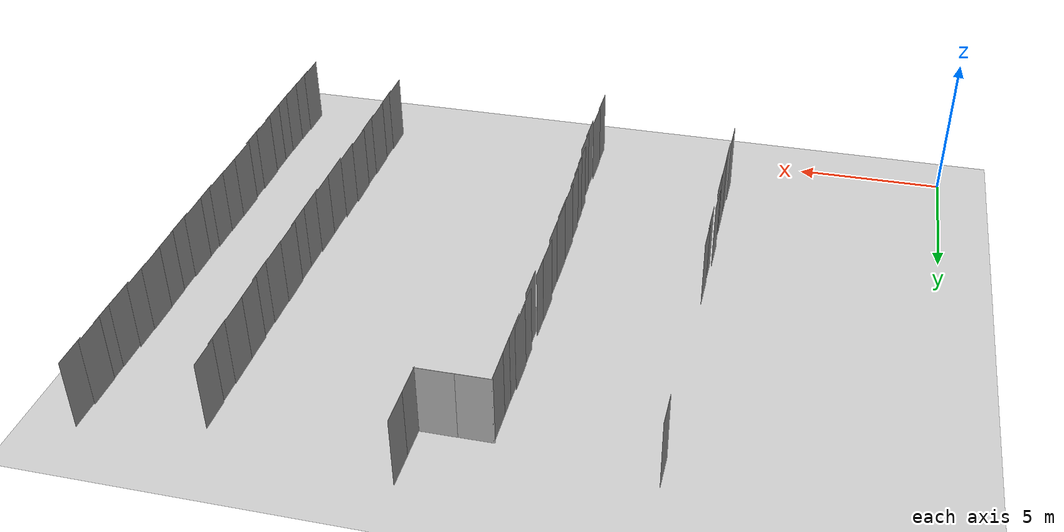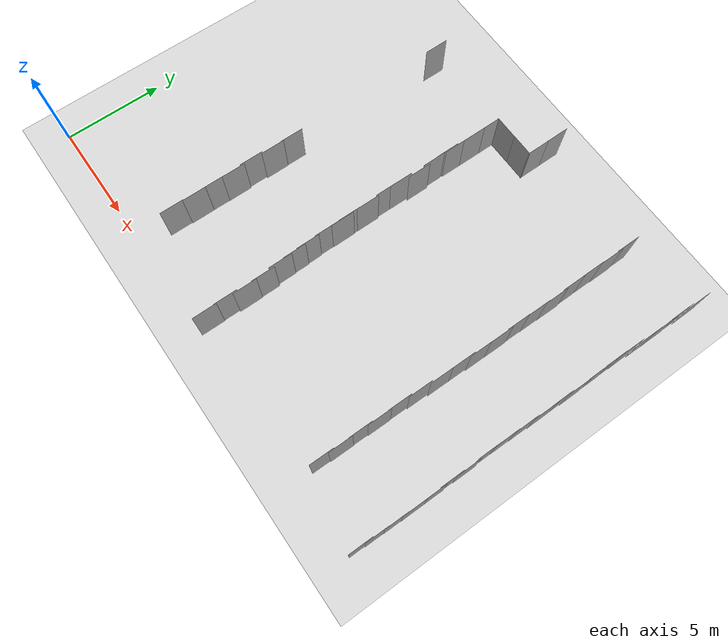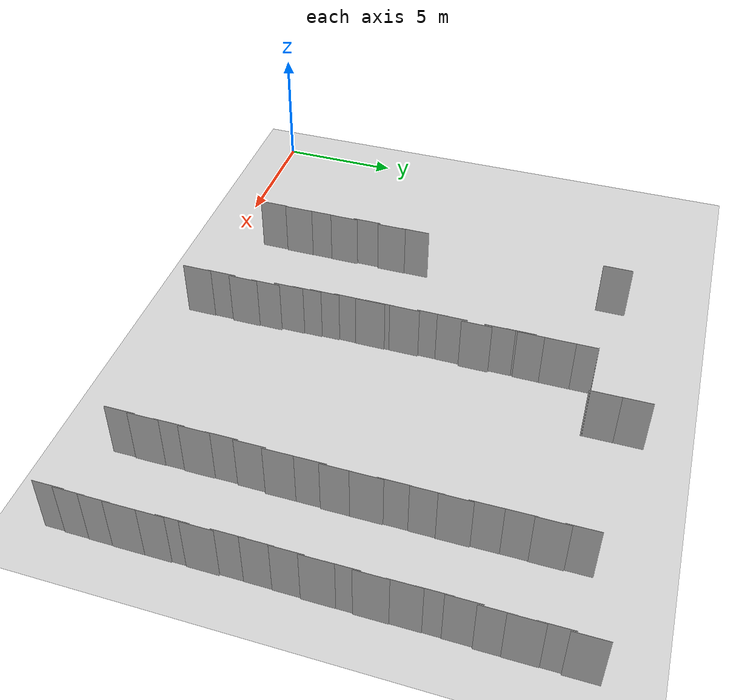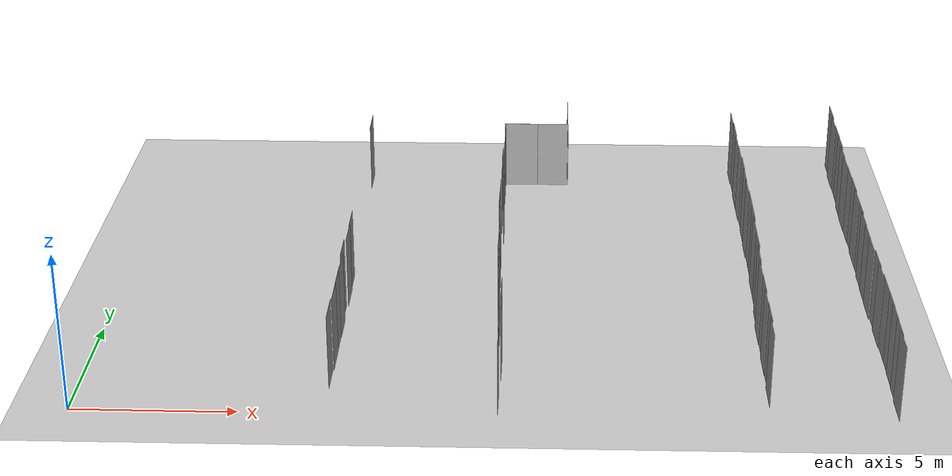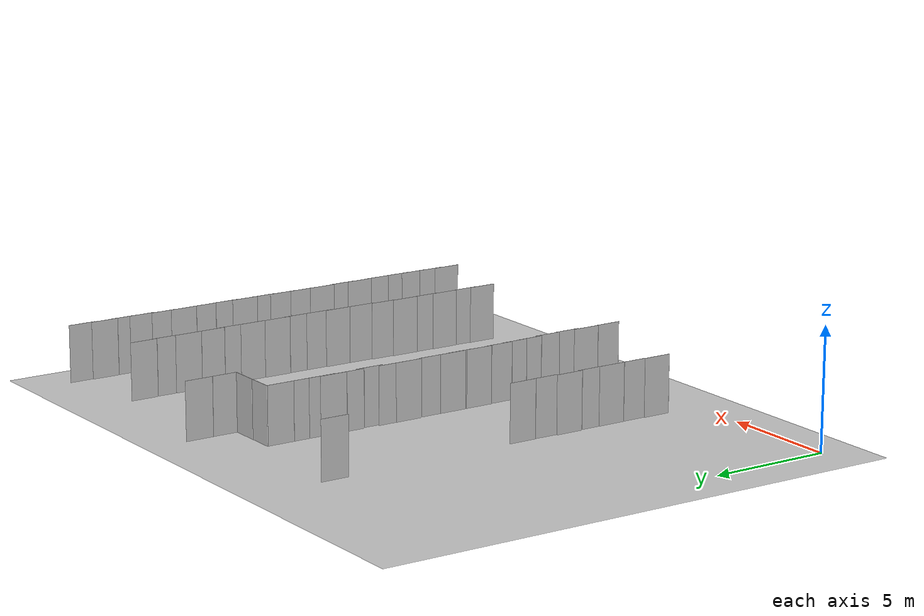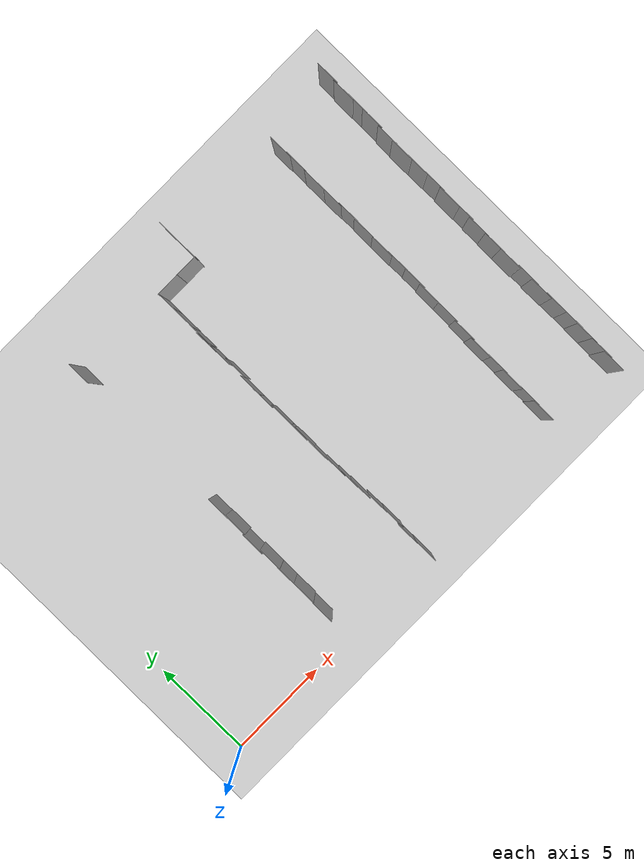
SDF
<sdf version="1.7">
 <world name="default">
  <model name="ground_plane">
   <static>1</static>
   <link name="link">
    <collision name="collision">
     <geometry><plane><normal>0 0 1</normal><size>100 100</size></plane></geometry>
     <surface><friction><ode><mu>100</mu><mu2>50</mu2></ode></friction></surface>
    </collision>
    <visual name="visual">
     <cast_shadows>0</cast_shadows>
     <geometry><plane><normal>0 0 1</normal><size>100 100</size></plane></geometry>
     <material>
      <script><uri>file://media/materials/scripts/gazebo.material</uri><name>Gazebo/Grey</name></script>
     </material>
    </visual>
   </link>
  </model>
  <model name="nist_maze_wall_240_clone_3_clone_5_clone_clone_0_clone_0">
   <static>1</static>
   <link name="nist__maze_wall_240_link">
    <collision name="collision">
     <geometry>
      <mesh><uri>model://nist_maze_wall_240/meshes/nist_maze_wall_240.dae</uri><scale>1 1 1</scale></mesh>
     </geometry>
    </collision>
    <visual name="visual">
     <geometry>
      <mesh><uri>model://nist_maze_wall_240/meshes/nist_maze_wall_240.dae</uri><scale>1 1 1</scale></mesh>
     </geometry>
    </visual>
   </link>
   <pose>13.1914 0.653304 0 0 -0 1.57</pose>
  </model>
  <model name="nist_maze_wall_240_clone_3_clone_5_clone_clone_0_clone_2">
   <static>1</static>
   <link name="nist__maze_wall_240_link">
    <collision name="collision">
     <geometry>
      <mesh><uri>model://nist_maze_wall_240/meshes/nist_maze_wall_240.dae</uri><scale>1 1 1</scale></mesh>
     </geometry>
    </collision>
    <visual name="visual">
     <geometry>
      <mesh><uri>model://nist_maze_wall_240/meshes/nist_maze_wall_240.dae</uri><scale>1 1 1</scale></mesh>
     </geometry>
    </visual>
   </link>
   <pose>13.169 1.7119 0 0 -0 1.57</pose>
  </model>
  <model name="nist_maze_wall_240_clone_3_clone_5_clone_clone_0_clone_3">
   <static>1</static>
   <link name="nist__maze_wall_240_link">
    <collision name="collision">
     <geometry>
      <mesh><uri>model://nist_maze_wall_240/meshes/nist_maze_wall_240.dae</uri><scale>1 1 1</scale></mesh>
     </geometry>
    </collision>
    <visual name="visual">
     <geometry>
      <mesh><uri>model://nist_maze_wall_240/meshes/nist_maze_wall_240.dae</uri><scale>1 1 1</scale></mesh>
     </geometry>
    </visual>
   </link>
   <pose>13.2334 2.66225 0 0 -0 1.57</pose>
  </model>
  <model name="nist_maze_wall_240_clone_3_clone_5_clone_clone_0_clone_4">
   <static>1</static>
   <link name="nist__maze_wall_240_link">
    <collision name="collision">
     <geometry>
      <mesh><uri>model://nist_maze_wall_240/meshes/nist_maze_wall_240.dae</uri><scale>1 1 1</scale></mesh>
     </geometry>
    </collision>
    <visual name="visual">
     <geometry>
      <mesh><uri>model://nist_maze_wall_240/meshes/nist_maze_wall_240.dae</uri><scale>1 1 1</scale></mesh>
     </geometry>
    </visual>
   </link>
   <pose>13.2046 3.61599 0 0 -0 1.57</pose>
  </model>
  <model name="nist_maze_wall_240_clone_3_clone_5_clone_clone_0_clone_5">
   <static>1</static>
   <link name="nist__maze_wall_240_link">
    <collision name="collision">
     <geometry>
      <mesh><uri>model://nist_maze_wall_240/meshes/nist_maze_wall_240.dae</uri><scale>1 1 1</scale></mesh>
     </geometry>
    </collision>
    <visual name="visual">
     <geometry>
      <mesh><uri>model://nist_maze_wall_240/meshes/nist_maze_wall_240.dae</uri><scale>1 1 1</scale></mesh>
     </geometry>
    </visual>
   </link>
   <pose>13.1179 4.56936 0 0 -0 1.57</pose>
  </model>
  <model name="nist_maze_wall_240_clone_3_clone_5_clone_clone_0_clone_6">
   <static>1</static>
   <link name="nist__maze_wall_240_link">
    <collision name="collision">
     <geometry>
      <mesh><uri>model://nist_maze_wall_240/meshes/nist_maze_wall_240.dae</uri><scale>1 1 1</scale></mesh>
     </geometry>
    </collision>
    <visual name="visual">
     <geometry>
      <mesh><uri>model://nist_maze_wall_240/meshes/nist_maze_wall_240.dae</uri><scale>1 1 1</scale></mesh>
     </geometry>
    </visual>
   </link>
   <pose>13.0912 5.31717 0 0 -0 1.57</pose>
  </model>
  <model name="nist_maze_wall_240_clone_3_clone_5_clone_clone_0_clone_7">
   <static>1</static>
   <link name="nist__maze_wall_240_link">
    <collision name="collision">
     <geometry>
      <mesh><uri>model://nist_maze_wall_240/meshes/nist_maze_wall_240.dae</uri><scale>1 1 1</scale></mesh>
     </geometry>
    </collision>
    <visual name="visual">
     <geometry>
      <mesh><uri>model://nist_maze_wall_240/meshes/nist_maze_wall_240.dae</uri><scale>1 1 1</scale></mesh>
     </geometry>
    </visual>
   </link>
   <pose>13.0578 6.05257 0 0 -0 1.57</pose>
  </model>
  <model name="nist_maze_wall_240_clone_3_clone_5_clone_clone_0_clone_8">
   <static>1</static>
   <link name="nist__maze_wall_240_link">
    <collision name="collision">
     <geometry>
      <mesh><uri>model://nist_maze_wall_240/meshes/nist_maze_wall_240.dae</uri><scale>1 1 1</scale></mesh>
     </geometry>
    </collision>
    <visual name="visual">
     <geometry>
      <mesh><uri>model://nist_maze_wall_240/meshes/nist_maze_wall_240.dae</uri><scale>1 1 1</scale></mesh>
     </geometry>
    </visual>
   </link>
   <pose>13.0235 7.06227 0 0 -0 1.57</pose>
  </model>
  <model name="nist_maze_wall_240_clone_3_clone_5_clone_clone_0_clone_9">
   <static>1</static>
   <link name="nist__maze_wall_240_link">
    <collision name="collision">
     <geometry>
      <mesh><uri>model://nist_maze_wall_240/meshes/nist_maze_wall_240.dae</uri><scale>1 1 1</scale></mesh>
     </geometry>
    </collision>
    <visual name="visual">
     <geometry>
      <mesh><uri>model://nist_maze_wall_240/meshes/nist_maze_wall_240.dae</uri><scale>1 1 1</scale></mesh>
     </geometry>
    </visual>
   </link>
   <pose>13.0135 8.31158 0 0 -0 1.57</pose>
  </model>
  <model name="nist_maze_wall_240_clone_3_clone_5_clone_clone_0_clone_10">
   <static>1</static>
   <link name="nist__maze_wall_240_link">
    <collision name="collision">
     <geometry>
      <mesh><uri>model://nist_maze_wall_240/meshes/nist_maze_wall_240.dae</uri><scale>1 1 1</scale></mesh>
     </geometry>
    </collision>
    <visual name="visual">
     <geometry>
      <mesh><uri>model://nist_maze_wall_240/meshes/nist_maze_wall_240.dae</uri><scale>1 1 1</scale></mesh>
     </geometry>
    </visual>
   </link>
   <pose>13.0231 9.31966 0 0 -0 1.57</pose>
  </model>
  <model name="nist_maze_wall_240_clone_3_clone_5_clone_clone_0_clone_11">
   <static>1</static>
   <link name="nist__maze_wall_240_link">
    <collision name="collision">
     <geometry>
      <mesh><uri>model://nist_maze_wall_240/meshes/nist_maze_wall_240.dae</uri><scale>1 1 1</scale></mesh>
     </geometry>
    </collision>
    <visual name="visual">
     <geometry>
      <mesh><uri>model://nist_maze_wall_240/meshes/nist_maze_wall_240.dae</uri><scale>1 1 1</scale></mesh>
     </geometry>
    </visual>
   </link>
   <pose>13.043 7.93222 0 0 -0 1.57</pose>
  </model>
  <model name="nist_maze_wall_240_clone_3_clone_5_clone_clone_0_clone_15">
   <static>1</static>
   <link name="nist__maze_wall_240_link">
    <collision name="collision">
     <geometry>
      <mesh><uri>model://nist_maze_wall_240/meshes/nist_maze_wall_240.dae</uri><scale>1 1 1</scale></mesh>
     </geometry>
    </collision>
    <visual name="visual">
     <geometry>
      <mesh><uri>model://nist_maze_wall_240/meshes/nist_maze_wall_240.dae</uri><scale>1 1 1</scale></mesh>
     </geometry>
    </visual>
   </link>
   <pose>8.11899 2.01684 0 0 -0 1.57</pose>
  </model>
  <model name="nist_maze_wall_240_clone_3_clone_5_clone_clone_0_clone_16">
   <static>1</static>
   <link name="nist__maze_wall_240_link">
    <collision name="collision">
     <geometry>
      <mesh><uri>model://nist_maze_wall_240/meshes/nist_maze_wall_240.dae</uri><scale>1 1 1</scale></mesh>
     </geometry>
    </collision>
    <visual name="visual">
     <geometry>
      <mesh><uri>model://nist_maze_wall_240/meshes/nist_maze_wall_240.dae</uri><scale>1 1 1</scale></mesh>
     </geometry>
    </visual>
   </link>
   <pose>8.15345 3.17075 0 0 -0 1.57</pose>
  </model>
  <model name="nist_maze_wall_240_clone_3_clone_5_clone_clone_0_clone_17">
   <static>1</static>
   <link name="nist__maze_wall_240_link">
    <collision name="collision">
     <geometry>
      <mesh><uri>model://nist_maze_wall_240/meshes/nist_maze_wall_240.dae</uri><scale>1 1 1</scale></mesh>
     </geometry>
    </collision>
    <visual name="visual">
     <geometry>
      <mesh><uri>model://nist_maze_wall_240/meshes/nist_maze_wall_240.dae</uri><scale>1 1 1</scale></mesh>
     </geometry>
    </visual>
   </link>
   <pose>8.14947 4.19664 0 0 -0 1.57</pose>
  </model>
  <model name="nist_maze_wall_240_clone_3_clone_5_clone_clone_0_clone_18">
   <static>1</static>
   <link name="nist__maze_wall_240_link">
    <collision name="collision">
     <geometry>
      <mesh><uri>model://nist_maze_wall_240/meshes/nist_maze_wall_240.dae</uri><scale>1 1 1</scale></mesh>
     </geometry>
    </collision>
    <visual name="visual">
     <geometry>
      <mesh><uri>model://nist_maze_wall_240/meshes/nist_maze_wall_240.dae</uri><scale>1 1 1</scale></mesh>
     </geometry>
    </visual>
   </link>
   <pose>8.16392 5.24779 0 0 -0 1.57</pose>
  </model>
  <model name="nist_maze_wall_240_clone_3_clone_5_clone_clone_0_clone_19">
   <static>1</static>
   <link name="nist__maze_wall_240_link">
    <collision name="collision">
     <geometry>
      <mesh><uri>model://nist_maze_wall_240/meshes/nist_maze_wall_240.dae</uri><scale>1 1 1</scale></mesh>
     </geometry>
    </collision>
    <visual name="visual">
     <geometry>
      <mesh><uri>model://nist_maze_wall_240/meshes/nist_maze_wall_240.dae</uri><scale>1 1 1</scale></mesh>
     </geometry>
    </visual>
   </link>
   <pose>8.10571 6.25056 0 0 -0 1.57</pose>
  </model>
  <model name="nist_maze_wall_240_clone_3_clone_5_clone_clone_0_clone_20">
   <static>1</static>
   <link name="nist__maze_wall_240_link">
    <collision name="collision">
     <geometry>
      <mesh><uri>model://nist_maze_wall_240/meshes/nist_maze_wall_240.dae</uri><scale>1 1 1</scale></mesh>
     </geometry>
    </collision>
    <visual name="visual">
     <geometry>
      <mesh><uri>model://nist_maze_wall_240/meshes/nist_maze_wall_240.dae</uri><scale>1 1 1</scale></mesh>
     </geometry>
    </visual>
   </link>
   <pose>8.17578 7.37784 0 0 -0 1.57</pose>
  </model>
  <model name="nist_maze_wall_240_clone_3_clone_5_clone_clone_0_clone_21">
   <static>1</static>
   <link name="nist__maze_wall_240_link">
    <collision name="collision">
     <geometry>
      <mesh><uri>model://nist_maze_wall_240/meshes/nist_maze_wall_240.dae</uri><scale>1 1 1</scale></mesh>
     </geometry>
    </collision>
    <visual name="visual">
     <geometry>
      <mesh><uri>model://nist_maze_wall_240/meshes/nist_maze_wall_240.dae</uri><scale>1 1 1</scale></mesh>
     </geometry>
    </visual>
   </link>
   <pose>8.15854 8.40829 0 0 -0 1.57</pose>
  </model>
  <model name="nist_maze_wall_240_clone_3_clone_5_clone_clone_0_clone_10_clone">
   <static>1</static>
   <link name="nist__maze_wall_240_link">
    <collision name="collision">
     <geometry>
      <mesh><uri>model://nist_maze_wall_240/meshes/nist_maze_wall_240.dae</uri><scale>1 1 1</scale></mesh>
     </geometry>
    </collision>
    <visual name="visual">
     <geometry>
      <mesh><uri>model://nist_maze_wall_240/meshes/nist_maze_wall_240.dae</uri><scale>1 1 1</scale></mesh>
     </geometry>
    </visual>
   </link>
   <pose>12.9655 10.4197 0 0 -0 1.57</pose>
  </model>
  <model name="nist_maze_wall_240_clone_3_clone_5_clone_clone_0_clone_10_clone_0">
   <static>1</static>
   <link name="nist__maze_wall_240_link">
    <collision name="collision">
     <geometry>
      <mesh><uri>model://nist_maze_wall_240/meshes/nist_maze_wall_240.dae</uri><scale>1 1 1</scale></mesh>
     </geometry>
    </collision>
    <visual name="visual">
     <geometry>
      <mesh><uri>model://nist_maze_wall_240/meshes/nist_maze_wall_240.dae</uri><scale>1 1 1</scale></mesh>
     </geometry>
    </visual>
   </link>
   <pose>12.9747 11.2138 0 0 -0 1.57</pose>
  </model>
  <model name="nist_maze_wall_240_clone_3_clone_5_clone_clone_0_clone_10_clone_1">
   <static>1</static>
   <link name="nist__maze_wall_240_link">
    <collision name="collision">
     <geometry>
      <mesh><uri>model://nist_maze_wall_240/meshes/nist_maze_wall_240.dae</uri><scale>1 1 1</scale></mesh>
     </geometry>
    </collision>
    <visual name="visual">
     <geometry>
      <mesh><uri>model://nist_maze_wall_240/meshes/nist_maze_wall_240.dae</uri><scale>1 1 1</scale></mesh>
     </geometry>
    </visual>
   </link>
   <pose>13.0681 12.1827 0 0 -0 1.57</pose>
  </model>
  <model name="nist_maze_wall_240_clone_3_clone_5_clone_clone_0_clone_10_clone_1_clone">
   <static>1</static>
   <link name="nist__maze_wall_240_link">
    <collision name="collision">
     <geometry>
      <mesh><uri>model://nist_maze_wall_240/meshes/nist_maze_wall_240.dae</uri><scale>1 1 1</scale></mesh>
     </geometry>
    </collision>
    <visual name="visual">
     <geometry>
      <mesh><uri>model://nist_maze_wall_240/meshes/nist_maze_wall_240.dae</uri><scale>1 1 1</scale></mesh>
     </geometry>
    </visual>
   </link>
   <pose>12.9909 13.0737 0 0 -0 1.57</pose>
  </model>
  <model name="nist_maze_wall_240_clone_3_clone_5_clone_clone_0_clone_10_clone_1_clone_0">
   <static>1</static>
   <link name="nist__maze_wall_240_link">
    <collision name="collision">
     <geometry>
      <mesh><uri>model://nist_maze_wall_240/meshes/nist_maze_wall_240.dae</uri><scale>1 1 1</scale></mesh>
     </geometry>
    </collision>
    <visual name="visual">
     <geometry>
      <mesh><uri>model://nist_maze_wall_240/meshes/nist_maze_wall_240.dae</uri><scale>1 1 1</scale></mesh>
     </geometry>
    </visual>
   </link>
   <pose>13.0183 14.3449 0 0 -0 1.57</pose>
  </model>
  <model name="nist_maze_wall_240_clone_3_clone_5_clone_clone_0_clone_10_clone_1_clone_1">
   <static>1</static>
   <link name="nist__maze_wall_240_link">
    <collision name="collision">
     <geometry>
      <mesh><uri>model://nist_maze_wall_240/meshes/nist_maze_wall_240.dae</uri><scale>1 1 1</scale></mesh>
     </geometry>
    </collision>
    <visual name="visual">
     <geometry>
      <mesh><uri>model://nist_maze_wall_240/meshes/nist_maze_wall_240.dae</uri><scale>1 1 1</scale></mesh>
     </geometry>
    </visual>
   </link>
   <pose>12.9757 13.863 0 0 -0 1.57</pose>
  </model>
  <model name="nist_maze_wall_240_clone_3_clone_5_clone_clone_0_clone_10_clone_1_clone_2">
   <static>1</static>
   <link name="nist__maze_wall_240_link">
    <collision name="collision">
     <geometry>
      <mesh><uri>model://nist_maze_wall_240/meshes/nist_maze_wall_240.dae</uri><scale>1 1 1</scale></mesh>
     </geometry>
    </collision>
    <visual name="visual">
     <geometry>
      <mesh><uri>model://nist_maze_wall_240/meshes/nist_maze_wall_240.dae</uri><scale>1 1 1</scale></mesh>
     </geometry>
    </visual>
   </link>
   <pose>13.0242 15.381 0 0 -0 1.57</pose>
  </model>
  <model name="nist_maze_wall_240_clone_3_clone_5_clone_clone_0_clone_10_clone_1_clone_3">
   <static>1</static>
   <link name="nist__maze_wall_240_link">
    <collision name="collision">
     <geometry>
      <mesh><uri>model://nist_maze_wall_240/meshes/nist_maze_wall_240.dae</uri><scale>1 1 1</scale></mesh>
     </geometry>
    </collision>
    <visual name="visual">
     <geometry>
      <mesh><uri>model://nist_maze_wall_240/meshes/nist_maze_wall_240.dae</uri><scale>1 1 1</scale></mesh>
     </geometry>
    </visual>
   </link>
   <pose>13.0221 16.2181 0 0 -0 1.57</pose>
  </model>
  <model name="nist_maze_wall_240_clone_3_clone_9_clone">
   <static>1</static>
   <link name="nist__maze_wall_240_link">
    <collision name="collision">
     <geometry>
      <mesh><uri>model://nist_maze_wall_240/meshes/nist_maze_wall_240.dae</uri><scale>1 1 1</scale></mesh>
     </geometry>
    </collision>
    <visual name="visual">
     <geometry>
      <mesh><uri>model://nist_maze_wall_240/meshes/nist_maze_wall_240.dae</uri><scale>1 1 1</scale></mesh>
     </geometry>
    </visual>
   </link>
   <pose>12.9859 16.2127 0 0 -0 0</pose>
  </model>
  <model name="nist_maze_wall_240_clone_3_clone_9_clone_0">
   <static>1</static>
   <link name="nist__maze_wall_240_link">
    <collision name="collision">
     <geometry>
      <mesh><uri>model://nist_maze_wall_240/meshes/nist_maze_wall_240.dae</uri><scale>1 1 1</scale></mesh>
     </geometry>
    </collision>
    <visual name="visual">
     <geometry>
      <mesh><uri>model://nist_maze_wall_240/meshes/nist_maze_wall_240.dae</uri><scale>1 1 1</scale></mesh>
     </geometry>
    </visual>
   </link>
   <pose>14.104 16.2179 0 0 -0 0</pose>
  </model>
  <model name="nist_maze_wall_240_clone_3_clone_5_clone_clone_0_clone_10_clone_1_clone_2_clone">
   <static>1</static>
   <link name="nist__maze_wall_240_link">
    <collision name="collision">
     <geometry>
      <mesh><uri>model://nist_maze_wall_240/meshes/nist_maze_wall_240.dae</uri><scale>1 1 1</scale></mesh>
     </geometry>
    </collision>
    <visual name="visual">
     <geometry>
      <mesh><uri>model://nist_maze_wall_240/meshes/nist_maze_wall_240.dae</uri><scale>1 1 1</scale></mesh>
     </geometry>
    </visual>
   </link>
   <pose>15.277 17.3614 0 0 -0 1.57</pose>
  </model>
  <model name="nist_maze_wall_240_clone_3_clone_5_clone_clone_0_clone_10_clone_1_clone_2_clone_0">
   <static>1</static>
   <link name="nist__maze_wall_240_link">
    <collision name="collision">
     <geometry>
      <mesh><uri>model://nist_maze_wall_240/meshes/nist_maze_wall_240.dae</uri><scale>1 1 1</scale></mesh>
     </geometry>
    </collision>
    <visual name="visual">
     <geometry>
      <mesh><uri>model://nist_maze_wall_240/meshes/nist_maze_wall_240.dae</uri><scale>1 1 1</scale></mesh>
     </geometry>
    </visual>
   </link>
   <pose>15.2725 18.4689 0 0 -0 1.57</pose>
  </model>
  <model name="nist_maze_wall_240_clone_3_clone_5_clone_clone_0_clone_10_clone_1_clone_2_clone_5">
   <static>1</static>
   <link name="nist__maze_wall_240_link">
    <collision name="collision">
     <geometry>
      <mesh><uri>model://nist_maze_wall_240/meshes/nist_maze_wall_240.dae</uri><scale>1 1 1</scale></mesh>
     </geometry>
    </collision>
    <visual name="visual">
     <geometry>
      <mesh><uri>model://nist_maze_wall_240/meshes/nist_maze_wall_240.dae</uri><scale>1 1 1</scale></mesh>
     </geometry>
    </visual>
   </link>
   <pose>8.1008 16.8872 0 0 -0 1.57</pose>
  </model>
  <model name="nist_maze_wall_240_clone_3_clone_5_clone_clone_0_clone_13_clone_6_clone_3_clone_clone_3_clone_7">
   <static>1</static>
   <link name="nist__maze_wall_240_link">
    <collision name="collision">
     <geometry>
      <mesh><uri>model://nist_maze_wall_240/meshes/nist_maze_wall_240.dae</uri><scale>1 1 1</scale></mesh>
     </geometry>
    </collision>
    <visual name="visual">
     <geometry>
      <mesh><uri>model://nist_maze_wall_240/meshes/nist_maze_wall_240.dae</uri><scale>1 1 1</scale></mesh>
     </geometry>
    </visual>
   </link>
   <pose>21.1543 1.2868 0 0 -0 1.57</pose>
  </model>
  <model name="nist_maze_wall_240_clone_3_clone_5_clone_clone_0_clone_13_clone_6_clone_3_clone_clone_3_clone_8">
   <static>1</static>
   <link name="nist__maze_wall_240_link">
    <collision name="collision">
     <geometry>
      <mesh><uri>model://nist_maze_wall_240/meshes/nist_maze_wall_240.dae</uri><scale>1 1 1</scale></mesh>
     </geometry>
    </collision>
    <visual name="visual">
     <geometry>
      <mesh><uri>model://nist_maze_wall_240/meshes/nist_maze_wall_240.dae</uri><scale>1 1 1</scale></mesh>
     </geometry>
    </visual>
   </link>
   <pose>21.1908 2.19162 0 0 -0 1.57</pose>
  </model>
  <model name="nist_maze_wall_240_clone_3_clone_5_clone_clone_0_clone_13_clone_6_clone_3_clone_clone_3_clone_9">
   <static>1</static>
   <link name="nist__maze_wall_240_link">
    <collision name="collision">
     <geometry>
      <mesh><uri>model://nist_maze_wall_240/meshes/nist_maze_wall_240.dae</uri><scale>1 1 1</scale></mesh>
     </geometry>
    </collision>
    <visual name="visual">
     <geometry>
      <mesh><uri>model://nist_maze_wall_240/meshes/nist_maze_wall_240.dae</uri><scale>1 1 1</scale></mesh>
     </geometry>
    </visual>
   </link>
   <pose>21.1727 3.19597 0 0 -0 1.57</pose>
  </model>
  <model name="nist_maze_wall_240_clone_3_clone_5_clone_clone_0_clone_13_clone_6_clone_3_clone_clone_3_clone_10">
   <static>1</static>
   <link name="nist__maze_wall_240_link">
    <collision name="collision">
     <geometry>
      <mesh><uri>model://nist_maze_wall_240/meshes/nist_maze_wall_240.dae</uri><scale>1 1 1</scale></mesh>
     </geometry>
    </collision>
    <visual name="visual">
     <geometry>
      <mesh><uri>model://nist_maze_wall_240/meshes/nist_maze_wall_240.dae</uri><scale>1 1 1</scale></mesh>
     </geometry>
    </visual>
   </link>
   <pose>21.2046 4.12982 0 0 -0 1.57</pose>
  </model>
  <model name="nist_maze_wall_240_clone_3_clone_5_clone_clone_0_clone_13_clone_6_clone_3_clone_clone_3_clone_11">
   <static>1</static>
   <link name="nist__maze_wall_240_link">
    <collision name="collision">
     <geometry>
      <mesh><uri>model://nist_maze_wall_240/meshes/nist_maze_wall_240.dae</uri><scale>1 1 1</scale></mesh>
     </geometry>
    </collision>
    <visual name="visual">
     <geometry>
      <mesh><uri>model://nist_maze_wall_240/meshes/nist_maze_wall_240.dae</uri><scale>1 1 1</scale></mesh>
     </geometry>
    </visual>
   </link>
   <pose>21.1885 5.16778 0 0 -0 1.57</pose>
  </model>
  <model name="nist_maze_wall_240_clone_3_clone_5_clone_clone_0_clone_13_clone_6_clone_3_clone_clone_3_clone_12">
   <static>1</static>
   <link name="nist__maze_wall_240_link">
    <collision name="collision">
     <geometry>
      <mesh><uri>model://nist_maze_wall_240/meshes/nist_maze_wall_240.dae</uri><scale>1 1 1</scale></mesh>
     </geometry>
    </collision>
    <visual name="visual">
     <geometry>
      <mesh><uri>model://nist_maze_wall_240/meshes/nist_maze_wall_240.dae</uri><scale>1 1 1</scale></mesh>
     </geometry>
    </visual>
   </link>
   <pose>21.2352 6.19372 0 0 -0 1.57</pose>
  </model>
  <model name="nist_maze_wall_240_clone_3_clone_5_clone_clone_0_clone_13_clone_6_clone_3_clone_clone_3_clone_13">
   <static>1</static>
   <link name="nist__maze_wall_240_link">
    <collision name="collision">
     <geometry>
      <mesh><uri>model://nist_maze_wall_240/meshes/nist_maze_wall_240.dae</uri><scale>1 1 1</scale></mesh>
     </geometry>
    </collision>
    <visual name="visual">
     <geometry>
      <mesh><uri>model://nist_maze_wall_240/meshes/nist_maze_wall_240.dae</uri><scale>1 1 1</scale></mesh>
     </geometry>
    </visual>
   </link>
   <pose>21.2948 7.26119 0 0 -0 1.57</pose>
  </model>
  <model name="nist_maze_wall_240_clone_3_clone_5_clone_clone_0_clone_13_clone_6_clone_3_clone_clone_3_clone_14">
   <static>1</static>
   <link name="nist__maze_wall_240_link">
    <collision name="collision">
     <geometry>
      <mesh><uri>model://nist_maze_wall_240/meshes/nist_maze_wall_240.dae</uri><scale>1 1 1</scale></mesh>
     </geometry>
    </collision>
    <visual name="visual">
     <geometry>
      <mesh><uri>model://nist_maze_wall_240/meshes/nist_maze_wall_240.dae</uri><scale>1 1 1</scale></mesh>
     </geometry>
    </visual>
   </link>
   <pose>21.2978 8.40293 0 0 -0 1.57</pose>
  </model>
  <model name="nist_maze_wall_240_clone_3_clone_5_clone_clone_0_clone_13_clone_6_clone_3_clone_clone_3_clone_15">
   <static>1</static>
   <link name="nist__maze_wall_240_link">
    <collision name="collision">
     <geometry>
      <mesh><uri>model://nist_maze_wall_240/meshes/nist_maze_wall_240.dae</uri><scale>1 1 1</scale></mesh>
     </geometry>
    </collision>
    <visual name="visual">
     <geometry>
      <mesh><uri>model://nist_maze_wall_240/meshes/nist_maze_wall_240.dae</uri><scale>1 1 1</scale></mesh>
     </geometry>
    </visual>
   </link>
   <pose>21.3414 9.31606 0 0 -0 1.57</pose>
  </model>
  <model name="nist_maze_wall_240_clone_3_clone_5_clone_clone_0_clone_13_clone_6_clone_3_clone_clone_3_clone_16">
   <static>1</static>
   <link name="nist__maze_wall_240_link">
    <collision name="collision">
     <geometry>
      <mesh><uri>model://nist_maze_wall_240/meshes/nist_maze_wall_240.dae</uri><scale>1 1 1</scale></mesh>
     </geometry>
    </collision>
    <visual name="visual">
     <geometry>
      <mesh><uri>model://nist_maze_wall_240/meshes/nist_maze_wall_240.dae</uri><scale>1 1 1</scale></mesh>
     </geometry>
    </visual>
   </link>
   <pose>21.3475 10.3809 0 0 -0 1.57</pose>
  </model>
  <model name="nist_maze_wall_240_clone_3_clone_5_clone_clone_0_clone_13_clone_6_clone_3_clone_clone_3_clone_17">
   <static>1</static>
   <link name="nist__maze_wall_240_link">
    <collision name="collision">
     <geometry>
      <mesh><uri>model://nist_maze_wall_240/meshes/nist_maze_wall_240.dae</uri><scale>1 1 1</scale></mesh>
     </geometry>
    </collision>
    <visual name="visual">
     <geometry>
      <mesh><uri>model://nist_maze_wall_240/meshes/nist_maze_wall_240.dae</uri><scale>1 1 1</scale></mesh>
     </geometry>
    </visual>
   </link>
   <pose>21.3218 11.3221 0 0 -0 1.57</pose>
  </model>
  <model name="nist_maze_wall_240_clone_3_clone_5_clone_clone_0_clone_13_clone_6_clone_3_clone_clone_3_clone_18">
   <static>1</static>
   <link name="nist__maze_wall_240_link">
    <collision name="collision">
     <geometry>
      <mesh><uri>model://nist_maze_wall_240/meshes/nist_maze_wall_240.dae</uri><scale>1 1 1</scale></mesh>
     </geometry>
    </collision>
    <visual name="visual">
     <geometry>
      <mesh><uri>model://nist_maze_wall_240/meshes/nist_maze_wall_240.dae</uri><scale>1 1 1</scale></mesh>
     </geometry>
    </visual>
   </link>
   <pose>21.3379 12.4497 0 0 -0 1.57</pose>
  </model>
  <model name="nist_maze_wall_240_clone_3_clone_5_clone_clone_0_clone_13_clone_6_clone_3_clone_clone_3_clone_19">
   <static>1</static>
   <link name="nist__maze_wall_240_link">
    <collision name="collision">
     <geometry>
      <mesh><uri>model://nist_maze_wall_240/meshes/nist_maze_wall_240.dae</uri><scale>1 1 1</scale></mesh>
     </geometry>
    </collision>
    <visual name="visual">
     <geometry>
      <mesh><uri>model://nist_maze_wall_240/meshes/nist_maze_wall_240.dae</uri><scale>1 1 1</scale></mesh>
     </geometry>
    </visual>
   </link>
   <pose>21.3557 13.4136 0 0 -0 1.57</pose>
  </model>
  <model name="nist_maze_wall_240_clone_3_clone_5_clone_clone_0_clone_13_clone_6_clone_3_clone_clone_3_clone_20">
   <static>1</static>
   <link name="nist__maze_wall_240_link">
    <collision name="collision">
     <geometry>
      <mesh><uri>model://nist_maze_wall_240/meshes/nist_maze_wall_240.dae</uri><scale>1 1 1</scale></mesh>
     </geometry>
    </collision>
    <visual name="visual">
     <geometry>
      <mesh><uri>model://nist_maze_wall_240/meshes/nist_maze_wall_240.dae</uri><scale>1 1 1</scale></mesh>
     </geometry>
    </visual>
   </link>
   <pose>21.3213 14.4123 0 0 -0 1.57</pose>
  </model>
  <model name="nist_maze_wall_240_clone_3_clone_5_clone_clone_0_clone_13_clone_6_clone_3_clone_clone_3_clone_21">
   <static>1</static>
   <link name="nist__maze_wall_240_link">
    <collision name="collision">
     <geometry>
      <mesh><uri>model://nist_maze_wall_240/meshes/nist_maze_wall_240.dae</uri><scale>1 1 1</scale></mesh>
     </geometry>
    </collision>
    <visual name="visual">
     <geometry>
      <mesh><uri>model://nist_maze_wall_240/meshes/nist_maze_wall_240.dae</uri><scale>1 1 1</scale></mesh>
     </geometry>
    </visual>
   </link>
   <pose>21.3158 15.4841 0 0 -0 1.57</pose>
  </model>
  <model name="nist_maze_wall_240_clone_3_clone_5_clone_clone_0_clone_13_clone_6_clone_3_clone_clone_3_clone_22">
   <static>1</static>
   <link name="nist__maze_wall_240_link">
    <collision name="collision">
     <geometry>
      <mesh><uri>model://nist_maze_wall_240/meshes/nist_maze_wall_240.dae</uri><scale>1 1 1</scale></mesh>
     </geometry>
    </collision>
    <visual name="visual">
     <geometry>
      <mesh><uri>model://nist_maze_wall_240/meshes/nist_maze_wall_240.dae</uri><scale>1 1 1</scale></mesh>
     </geometry>
    </visual>
   </link>
   <pose>21.3353 16.5716 0 0 -0 1.57</pose>
  </model>
  <model name="nist_maze_wall_240_clone_3_clone_5_clone_clone_0_clone_13_clone_6_clone_3_clone_clone_3_clone_23">
   <static>1</static>
   <link name="nist__maze_wall_240_link">
    <collision name="collision">
     <geometry>
      <mesh><uri>model://nist_maze_wall_240/meshes/nist_maze_wall_240.dae</uri><scale>1 1 1</scale></mesh>
     </geometry>
    </collision>
    <visual name="visual">
     <geometry>
      <mesh><uri>model://nist_maze_wall_240/meshes/nist_maze_wall_240.dae</uri><scale>1 1 1</scale></mesh>
     </geometry>
    </visual>
   </link>
   <pose>21.3077 17.5249 0 0 -0 1.57</pose>
  </model>
  <model name="nist_maze_wall_240_clone_3_clone_5_clone_clone_0_clone_13_clone_6_clone_3_clone_clone_3_clone_0_clone_9">
   <static>1</static>
   <link name="nist__maze_wall_240_link">
    <collision name="collision">
     <geometry>
      <mesh><uri>model://nist_maze_wall_240/meshes/nist_maze_wall_240.dae</uri><scale>1 1 1</scale></mesh>
     </geometry>
    </collision>
    <visual name="visual">
     <geometry>
      <mesh><uri>model://nist_maze_wall_240/meshes/nist_maze_wall_240.dae</uri><scale>1 1 1</scale></mesh>
     </geometry>
    </visual>
   </link>
   <pose>24.8371 0.618545 0 0 -0 1.57</pose>
  </model>
  <model name="nist_maze_wall_240_clone_3_clone_5_clone_clone_0_clone_13_clone_6_clone_3_clone_clone_3_clone_0_clone_10">
   <static>1</static>
   <link name="nist__maze_wall_240_link">
    <collision name="collision">
     <geometry>
      <mesh><uri>model://nist_maze_wall_240/meshes/nist_maze_wall_240.dae</uri><scale>1 1 1</scale></mesh>
     </geometry>
    </collision>
    <visual name="visual">
     <geometry>
      <mesh><uri>model://nist_maze_wall_240/meshes/nist_maze_wall_240.dae</uri><scale>1 1 1</scale></mesh>
     </geometry>
    </visual>
   </link>
   <pose>24.8704 1.38811 0 0 -0 1.57</pose>
  </model>
  <model name="nist_maze_wall_240_clone_3_clone_5_clone_clone_0_clone_13_clone_6_clone_3_clone_clone_3_clone_0_clone_11">
   <static>1</static>
   <link name="nist__maze_wall_240_link">
    <collision name="collision">
     <geometry>
      <mesh><uri>model://nist_maze_wall_240/meshes/nist_maze_wall_240.dae</uri><scale>1 1 1</scale></mesh>
     </geometry>
    </collision>
    <visual name="visual">
     <geometry>
      <mesh><uri>model://nist_maze_wall_240/meshes/nist_maze_wall_240.dae</uri><scale>1 1 1</scale></mesh>
     </geometry>
    </visual>
   </link>
   <pose>24.8874 2.30655 0 0 -0 1.57</pose>
  </model>
  <model name="nist_maze_wall_240_clone_3_clone_5_clone_clone_0_clone_13_clone_6_clone_3_clone_clone_3_clone_0_clone_12">
   <static>1</static>
   <link name="nist__maze_wall_240_link">
    <collision name="collision">
     <geometry>
      <mesh><uri>model://nist_maze_wall_240/meshes/nist_maze_wall_240.dae</uri><scale>1 1 1</scale></mesh>
     </geometry>
    </collision>
    <visual name="visual">
     <geometry>
      <mesh><uri>model://nist_maze_wall_240/meshes/nist_maze_wall_240.dae</uri><scale>1 1 1</scale></mesh>
     </geometry>
    </visual>
   </link>
   <pose>24.9038 3.1997 0 0 -0 1.57</pose>
  </model>
  <model name="nist_maze_wall_240_clone_3_clone_5_clone_clone_0_clone_13_clone_6_clone_3_clone_clone_3_clone_0_clone_13">
   <static>1</static>
   <link name="nist__maze_wall_240_link">
    <collision name="collision">
     <geometry>
      <mesh><uri>model://nist_maze_wall_240/meshes/nist_maze_wall_240.dae</uri><scale>1 1 1</scale></mesh>
     </geometry>
    </collision>
    <visual name="visual">
     <geometry>
      <mesh><uri>model://nist_maze_wall_240/meshes/nist_maze_wall_240.dae</uri><scale>1 1 1</scale></mesh>
     </geometry>
    </visual>
   </link>
   <pose>24.9036 4.18727 0 0 -0 1.57</pose>
  </model>
  <model name="nist_maze_wall_240_clone_3_clone_5_clone_clone_0_clone_13_clone_6_clone_3_clone_clone_3_clone_0_clone_14">
   <static>1</static>
   <link name="nist__maze_wall_240_link">
    <collision name="collision">
     <geometry>
      <mesh><uri>model://nist_maze_wall_240/meshes/nist_maze_wall_240.dae</uri><scale>1 1 1</scale></mesh>
     </geometry>
    </collision>
    <visual name="visual">
     <geometry>
      <mesh><uri>model://nist_maze_wall_240/meshes/nist_maze_wall_240.dae</uri><scale>1 1 1</scale></mesh>
     </geometry>
    </visual>
   </link>
   <pose>24.8765 5.06964 0 0 -0 1.57</pose>
  </model>
  <model name="nist_maze_wall_240_clone_3_clone_5_clone_clone_0_clone_13_clone_6_clone_3_clone_clone_3_clone_0_clone_15">
   <static>1</static>
   <link name="nist__maze_wall_240_link">
    <collision name="collision">
     <geometry>
      <mesh><uri>model://nist_maze_wall_240/meshes/nist_maze_wall_240.dae</uri><scale>1 1 1</scale></mesh>
     </geometry>
    </collision>
    <visual name="visual">
     <geometry>
      <mesh><uri>model://nist_maze_wall_240/meshes/nist_maze_wall_240.dae</uri><scale>1 1 1</scale></mesh>
     </geometry>
    </visual>
   </link>
   <pose>24.9047 5.88869 0 0 -0 1.57</pose>
  </model>
  <model name="nist_maze_wall_240_clone_3_clone_5_clone_clone_0_clone_13_clone_6_clone_3_clone_clone_3_clone_0_clone_16">
   <static>1</static>
   <link name="nist__maze_wall_240_link">
    <collision name="collision">
     <geometry>
      <mesh><uri>model://nist_maze_wall_240/meshes/nist_maze_wall_240.dae</uri><scale>1 1 1</scale></mesh>
     </geometry>
    </collision>
    <visual name="visual">
     <geometry>
      <mesh><uri>model://nist_maze_wall_240/meshes/nist_maze_wall_240.dae</uri><scale>1 1 1</scale></mesh>
     </geometry>
    </visual>
   </link>
   <pose>24.8627 6.96274 0 0 -0 1.57</pose>
  </model>
  <model name="nist_maze_wall_240_clone_3_clone_5_clone_clone_0_clone_13_clone_6_clone_3_clone_clone_3_clone_0_clone_17">
   <static>1</static>
   <link name="nist__maze_wall_240_link">
    <collision name="collision">
     <geometry>
      <mesh><uri>model://nist_maze_wall_240/meshes/nist_maze_wall_240.dae</uri><scale>1 1 1</scale></mesh>
     </geometry>
    </collision>
    <visual name="visual">
     <geometry>
      <mesh><uri>model://nist_maze_wall_240/meshes/nist_maze_wall_240.dae</uri><scale>1 1 1</scale></mesh>
     </geometry>
    </visual>
   </link>
   <pose>24.8737 7.91296 0 0 -0 1.57</pose>
  </model>
  <model name="nist_maze_wall_240_clone_3_clone_5_clone_clone_0_clone_13_clone_6_clone_3_clone_clone_3_clone_0_clone_18">
   <static>1</static>
   <link name="nist__maze_wall_240_link">
    <collision name="collision">
     <geometry>
      <mesh><uri>model://nist_maze_wall_240/meshes/nist_maze_wall_240.dae</uri><scale>1 1 1</scale></mesh>
     </geometry>
    </collision>
    <visual name="visual">
     <geometry>
      <mesh><uri>model://nist_maze_wall_240/meshes/nist_maze_wall_240.dae</uri><scale>1 1 1</scale></mesh>
     </geometry>
    </visual>
   </link>
   <pose>24.8924 8.9084 0 0 -0 1.57</pose>
  </model>
  <model name="nist_maze_wall_240_clone_3_clone_5_clone_clone_0_clone_13_clone_6_clone_3_clone_clone_3_clone_0_clone_19">
   <static>1</static>
   <link name="nist__maze_wall_240_link">
    <collision name="collision">
     <geometry>
      <mesh><uri>model://nist_maze_wall_240/meshes/nist_maze_wall_240.dae</uri><scale>1 1 1</scale></mesh>
     </geometry>
    </collision>
    <visual name="visual">
     <geometry>
      <mesh><uri>model://nist_maze_wall_240/meshes/nist_maze_wall_240.dae</uri><scale>1 1 1</scale></mesh>
     </geometry>
    </visual>
   </link>
   <pose>24.9267 9.89107 0 0 -0 1.57</pose>
  </model>
  <model name="nist_maze_wall_240_clone_3_clone_5_clone_clone_0_clone_13_clone_6_clone_3_clone_clone_3_clone_0_clone_20">
   <static>1</static>
   <link name="nist__maze_wall_240_link">
    <collision name="collision">
     <geometry>
      <mesh><uri>model://nist_maze_wall_240/meshes/nist_maze_wall_240.dae</uri><scale>1 1 1</scale></mesh>
     </geometry>
    </collision>
    <visual name="visual">
     <geometry>
      <mesh><uri>model://nist_maze_wall_240/meshes/nist_maze_wall_240.dae</uri><scale>1 1 1</scale></mesh>
     </geometry>
    </visual>
   </link>
   <pose>24.9209 10.726 0 0 -0 1.57</pose>
  </model>
  <model name="nist_maze_wall_240_clone_3_clone_5_clone_clone_0_clone_13_clone_6_clone_3_clone_clone_3_clone_0_clone_21">
   <static>1</static>
   <link name="nist__maze_wall_240_link">
    <collision name="collision">
     <geometry>
      <mesh><uri>model://nist_maze_wall_240/meshes/nist_maze_wall_240.dae</uri><scale>1 1 1</scale></mesh>
     </geometry>
    </collision>
    <visual name="visual">
     <geometry>
      <mesh><uri>model://nist_maze_wall_240/meshes/nist_maze_wall_240.dae</uri><scale>1 1 1</scale></mesh>
     </geometry>
    </visual>
   </link>
   <pose>24.9552 11.6544 0 0 -0 1.57</pose>
  </model>
  <model name="nist_maze_wall_240_clone_3_clone_5_clone_clone_0_clone_13_clone_6_clone_3_clone_clone_3_clone_0_clone_22">
   <static>1</static>
   <link name="nist__maze_wall_240_link">
    <collision name="collision">
     <geometry>
      <mesh><uri>model://nist_maze_wall_240/meshes/nist_maze_wall_240.dae</uri><scale>1 1 1</scale></mesh>
     </geometry>
    </collision>
    <visual name="visual">
     <geometry>
      <mesh><uri>model://nist_maze_wall_240/meshes/nist_maze_wall_240.dae</uri><scale>1 1 1</scale></mesh>
     </geometry>
    </visual>
   </link>
   <pose>24.9407 12.7131 0 0 -0 1.57</pose>
  </model>
  <model name="nist_maze_wall_240_clone_3_clone_5_clone_clone_0_clone_13_clone_6_clone_3_clone_clone_3_clone_0_clone_23">
   <static>1</static>
   <link name="nist__maze_wall_240_link">
    <collision name="collision">
     <geometry>
      <mesh><uri>model://nist_maze_wall_240/meshes/nist_maze_wall_240.dae</uri><scale>1 1 1</scale></mesh>
     </geometry>
    </collision>
    <visual name="visual">
     <geometry>
      <mesh><uri>model://nist_maze_wall_240/meshes/nist_maze_wall_240.dae</uri><scale>1 1 1</scale></mesh>
     </geometry>
    </visual>
   </link>
   <pose>24.93 13.6468 0 0 -0 1.57</pose>
  </model>
  <model name="nist_maze_wall_240_clone_3_clone_5_clone_clone_0_clone_13_clone_6_clone_3_clone_clone_3_clone_0_clone_24">
   <static>1</static>
   <link name="nist__maze_wall_240_link">
    <collision name="collision">
     <geometry>
      <mesh><uri>model://nist_maze_wall_240/meshes/nist_maze_wall_240.dae</uri><scale>1 1 1</scale></mesh>
     </geometry>
    </collision>
    <visual name="visual">
     <geometry>
      <mesh><uri>model://nist_maze_wall_240/meshes/nist_maze_wall_240.dae</uri><scale>1 1 1</scale></mesh>
     </geometry>
    </visual>
   </link>
   <pose>24.9474 14.5416 0 0 -0 1.57</pose>
  </model>
  <model name="nist_maze_wall_240_clone_3_clone_5_clone_clone_0_clone_13_clone_6_clone_3_clone_clone_3_clone_0_clone_25">
   <static>1</static>
   <link name="nist__maze_wall_240_link">
    <collision name="collision">
     <geometry>
      <mesh><uri>model://nist_maze_wall_240/meshes/nist_maze_wall_240.dae</uri><scale>1 1 1</scale></mesh>
     </geometry>
    </collision>
    <visual name="visual">
     <geometry>
      <mesh><uri>model://nist_maze_wall_240/meshes/nist_maze_wall_240.dae</uri><scale>1 1 1</scale></mesh>
     </geometry>
    </visual>
   </link>
   <pose>25.0004 15.5393 0 0 -0 1.57</pose>
  </model>
  <model name="nist_maze_wall_240_clone_3_clone_5_clone_clone_0_clone_13_clone_6_clone_3_clone_clone_3_clone_0_clone_26">
   <static>1</static>
   <link name="nist__maze_wall_240_link">
    <collision name="collision">
     <geometry>
      <mesh><uri>model://nist_maze_wall_240/meshes/nist_maze_wall_240.dae</uri><scale>1 1 1</scale></mesh>
     </geometry>
    </collision>
    <visual name="visual">
     <geometry>
      <mesh><uri>model://nist_maze_wall_240/meshes/nist_maze_wall_240.dae</uri><scale>1 1 1</scale></mesh>
     </geometry>
    </visual>
   </link>
   <pose>25.012 16.4319 0 0 -0 1.57</pose>
  </model>
  <model name="nist_maze_wall_240_clone_3_clone_5_clone_clone_0_clone_13_clone_6_clone_3_clone_clone_3_clone_0_clone_27">
   <static>1</static>
   <link name="nist__maze_wall_240_link">
    <collision name="collision">
     <geometry>
      <mesh><uri>model://nist_maze_wall_240/meshes/nist_maze_wall_240.dae</uri><scale>1 1 1</scale></mesh>
     </geometry>
    </collision>
    <visual name="visual">
     <geometry>
      <mesh><uri>model://nist_maze_wall_240/meshes/nist_maze_wall_240.dae</uri><scale>1 1 1</scale></mesh>
     </geometry>
    </visual>
   </link>
   <pose>24.9958 17.3019 0 0 -0 1.57</pose>
  </model>
  <model name="nist_maze_wall_240_clone_3_clone_5_clone_clone_0_clone_13_clone_6_clone_3_clone_clone_3_clone_0_clone_28">
   <static>1</static>
   <link name="nist__maze_wall_240_link">
    <collision name="collision">
     <geometry>
      <mesh><uri>model://nist_maze_wall_240/meshes/nist_maze_wall_240.dae</uri><scale>1 1 1</scale></mesh>
     </geometry>
    </collision>
    <visual name="visual">
     <geometry>
      <mesh><uri>model://nist_maze_wall_240/meshes/nist_maze_wall_240.dae</uri><scale>1 1 1</scale></mesh>
     </geometry>
    </visual>
   </link>
   <pose>25.0446 18.3009 0 0 -0 1.57</pose>
  </model>
 </world>
</sdf>
